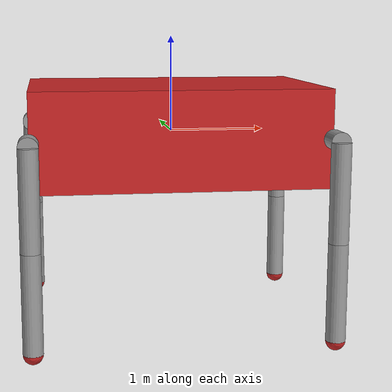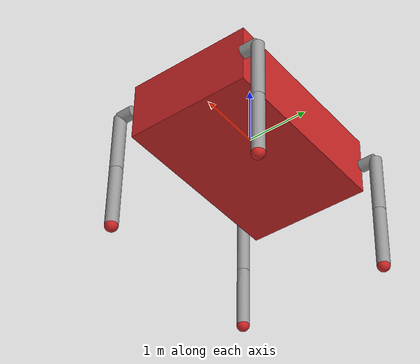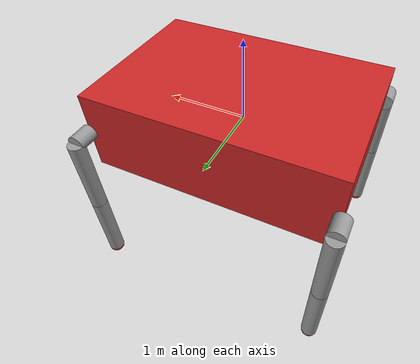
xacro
<?xml version="1.0" encoding="utf-8"?>
<robot name="quadruped" xmlns:xacro="http://www.ros.org/wiki/xacro">

    <!-- Define colors for links -->
    <xacro:include
        filename="/workspace/src/robot_descriptions/generic_quadruped_description/xacro/materials.xacro" />

    <!-- Define parameters (masses sizes) for the quadruped -->
    <xacro:include
        filename="/workspace/src/robot_descriptions/generic_quadruped_description/xacro/params.xacro" />

    <!-- Define macros for links, joints, and leg -->
    <xacro:include
        filename="/workspace/src/robot_descriptions/generic_quadruped_description/xacro/leg.xacro" />

    <xacro:base_link
        name="base" L_x="${base_Lx}" L_y="${base_Ly}" L_z="${base_Lz}" mass="${base_m}"
        inertial_link="False" />

    <!-- Insert dummy link to carry inertia values for base link -->
    <xacro:base_link
        name="base_inertia" L_x="${base_Lx}" L_y="${base_Ly}" L_z="${base_Lz}" mass="${base_m}"
        inertial_link="True" />

    <xacro:fixed_joint name="inertial_base_joint" parent="base" child="base_inertia" length="0.0" />

    <xacro:leg leg_name="FR" right="True"
        Px="${base_Lx/2}" Py="${-base_Ly/2}" Pz="0.0" rad="${FR_rad}" L1="${FR_L1}" L2="${FR_L2}"
        L3="${FR_L3}" m1="${FR_m1}" m2="${FR_m2}" m3="${FR_m3}" m4="${FR_m4}" />

    <xacro:leg leg_name="FL" right="False"
        Px="${base_Lx/2}" Py="${base_Ly/2}" Pz="0.0" rad="${FL_rad}" L1="${FL_L1}" L2="${FL_L2}"
        L3="${FL_L3}" m1="${FL_m1}" m2="${FL_m2}" m3="${FL_m3}" m4="${FL_m4}" />

    <xacro:leg leg_name="RL" right="False"
        Px="${-base_Lx/2}" Py="${base_Ly/2}" Pz="0.0" rad="${RL_rad}" L1="${RL_L1}" L2="${RL_L2}"
        L3="${RL_L3}" m1="${RL_m1}" m2="${RL_m2}" m3="${RL_m3}" m4="${RL_m4}" />

    <xacro:leg leg_name="RR" right="True"
        Px="${-base_Lx/2}" Py="${-base_Ly/2}" Pz="0.0" rad="${RR_rad}" L1="${RR_L1}" L2="${RR_L2}"
        L3="${RR_L3}" m1="${RR_m1}" m2="${RR_m2}" m3="${RR_m3}" m4="${RR_m4}" />

</robot>

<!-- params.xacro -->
<robot name="quadruped" xmlns:xacro="http://www.ros.org/wiki/xacro">

    <!-- Base Parameters -->
    <xacro:property name="base_Lx" value="3" />
    <xacro:property name="base_Ly" value="2" />
    <xacro:property name="base_Lz" value="1" />
    <xacro:property name="base_m" value="1" />

    <!-- FR Leg Parameters -->
    <xacro:property name="FR_rad" value="0.1" />
    <xacro:property name="FR_L1" value="0.25" />
    <xacro:property name="FR_L2" value="1" />
    <xacro:property name="FR_L3" value="1" />
    <xacro:property name="FR_m1" value="1" />
    <xacro:property name="FR_m2" value="1" />
    <xacro:property name="FR_m3" value="1" />
    <xacro:property name="FR_m4" value="1" />

    <!-- FL Leg Parameters -->
    <xacro:property name="FL_rad" value="0.1" />
    <xacro:property name="FL_L1" value="0.25" />
    <xacro:property name="FL_L2" value="1" />
    <xacro:property name="FL_L3" value="1" />
    <xacro:property name="FL_m1" value="1" />
    <xacro:property name="FL_m2" value="1" />
    <xacro:property name="FL_m3" value="1" />
    <xacro:property name="FL_m4" value="1" />

    <!-- RL Leg Parameters -->
    <xacro:property name="RL_rad" value="0.1" />
    <xacro:property name="RL_L1" value="0.25" />
    <xacro:property name="RL_L2" value="1" />
    <xacro:property name="RL_L3" value="1" />
    <xacro:property name="RL_m1" value="1" />
    <xacro:property name="RL_m2" value="1" />
    <xacro:property name="RL_m3" value="1" />
    <xacro:property name="RL_m4" value="1" />

    <!-- RR Leg Parameters -->
    <xacro:property name="RR_rad" value="0.1" />
    <xacro:property name="RR_L1" value="0.25" />
    <xacro:property name="RR_L2" value="1" />
    <xacro:property name="RR_L3" value="1" />
    <xacro:property name="RR_m1" value="1" />
    <xacro:property name="RR_m2" value="1" />
    <xacro:property name="RR_m3" value="1" />
    <xacro:property name="RR_m4" value="1" />

</robot>

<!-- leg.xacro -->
<robot xmlns:xacro="http://www.ros.org/wiki/xacro">

    <xacro:include
        filename="/workspace/src/robot_descriptions/generic_quadruped_description/xacro/const.xacro" />

    <xacro:macro name="base_to_hip_joint" params="name right parent child Px Py Pz roll pitch yaw">
        <xacro:if value="${right == True}">
            <joint name="${name}" type="continuous">
                <origin
                    xyz="${Px} ${Py} ${Pz}"
                    rpy="${roll+PI/2} ${pitch} ${yaw-PI/2}" />
                <parent
                    link="${parent}" />
                <child
                    link="${child}" />
                <axis
                    xyz="0 0 1" />
            </joint>
        </xacro:if>
        <xacro:if value="${right == False}">
            <joint name="${name}" type="continuous">
                <origin
                    xyz="${Px} ${Py} ${Pz}"
                    rpy="${roll+PI/2} ${pitch} ${yaw+PI/2}" />
                <parent
                    link="${parent}" />
                <child
                    link="${child}" />
                <axis
                    xyz="0 0 1" />
            </joint>
        </xacro:if>
    </xacro:macro>

    <xacro:macro name="rev_joint" params="name parent child length roll pitch yaw">
        <joint name="${name}" type="continuous">
            <origin
                xyz="${length} 0 0"
                rpy="${roll} ${pitch} ${yaw}" />
            <parent
                link="${parent}" />
            <child
                link="${child}" />
            <axis
                xyz="0 0 1" />
        </joint>
    </xacro:macro>

    <xacro:macro name="fixed_joint" params="name parent child length">
        <joint name="${name}" type="fixed">
            <origin
                xyz="${length} 0 0"
                rpy="0.0 0.0 0.0" />
            <parent
                link="${parent}" />
            <child
                link="${child}" />
        </joint>
    </xacro:macro>

    <xacro:macro name="base_link" params="name L_x L_y L_z mass inertial_link">
        <link name="${name}">
            <xacro:if value="${inertial_link == True}">
                <inertial>
                    <origin
                        xyz="0 0 0"
                        rpy="0 0 0" />
                    <mass
                        value="${mass}" />
                    <inertia
                        ixx="${(mass / 12) * (L_y*L_y + L_z*L_z)}"
                        ixy="0"
                        ixz="0"
                        iyy="${(mass / 12) * (L_x*L_x + L_z*L_z)}"
                        iyz="0"
                        izz="${(mass / 12) * (L_x*L_x + L_y*L_y)}" />
                </inertial>
            </xacro:if>
            <xacro:if value="${inertial_link == False}">
                <visual>
                    <origin
                        xyz="0 0 0"
                        rpy="0 0 0" />
                    <geometry>
                        <box size="${L_x} ${L_y} ${L_z}" />
                    </geometry>
                    <material name="red" />
                </visual>
            </xacro:if>
            <xacro:no_collision/>
        </link>
    </xacro:macro>

    <xacro:macro name="link" params="link_name mass rad length">
        <link name="${link_name}">
            <inertial>
                <origin
                    xyz="${length/2} 0 0"
                    rpy="0 0 0" />
                <mass value="${mass}" />
                <inertia
                    ixx="${.5 * mass * rad*rad}"
                    ixy="0"
                    ixz="0"
                    iyy="${(1/12) * (length*length + 3*rad*rad) * mass}"
                    iyz="0"
                    izz="${(1/12) * (length*length + 3*rad*rad) * mass}" />
            </inertial>
            <visual>
                <origin
                    xyz="${length/2} 0 0"
                    rpy="0 ${PI/2} 0" />
                <geometry>
                    <cylinder length="${length}" radius="${rad}" />
                </geometry>
                <material name="grey" />
            </visual>
            <xacro:no_collision/>
        </link>
    </xacro:macro>

    <xacro:macro name="foot" params="foot_name mass rad">
        <link name="${foot_name}">
            <inertial>
                <origin
                    xyz="0 0 0"
                    rpy="0 0 0" />
                <mass value="${mass}" />
                <inertia
                    ixx="${(2/5) * (mass*rad*rad)}"
                    ixy="0"
                    ixz="0"
                    iyy="${(83/320) * (mass*rad*rad)}"
                    iyz="0"
                    izz="${(83/320) * (mass*rad*rad)}" />
            </inertial>
            <visual>
                <origin
                    xyz="0 0 0"
                    rpy="0 0 0" />
                <geometry>
                    <sphere radius="${rad}" />
                </geometry>
                <material name="red" />
            </visual>
            <collision>
                <origin
                    xyz="0 0 0"
                    rpy="0 0 0" />
                <geometry>
                    <sphere radius="${rad}" />
                </geometry>
            </collision>
        </link>
    </xacro:macro>

    <xacro:macro name="no_collision">
        <collision>
            <geometry>
                <box size="0 0 0" />
            </geometry>
        </collision>
    </xacro:macro>

    <xacro:macro name="leg" params="leg_name right Px Py Pz rad L1 L2 L3 m1 m2 m3 m4">

        <xacro:link link_name="${leg_name}_hip" mass="${m1}" rad="${rad}" length="${L1}" />

        <xacro:base_to_hip_joint name="${leg_name}_hip_joint" right="${right}" parent="base"
            child="${leg_name}_hip"
            Px="${Px}" Py="${Py}" Pz="${Pz}" roll="0.0" pitch="0.0" yaw="0.0" />

        <xacro:link link_name="${leg_name}_thigh" mass="${m2}" rad="${rad}" length="${L2}" />

        <xacro:rev_joint name="${leg_name}_thigh_joint" parent="${leg_name}_hip"
            child="${leg_name}_thigh" length="${L1}" roll="${PI/2}" pitch="0.0" yaw="${-PI/2}" />

        <xacro:link link_name="${leg_name}_calf" mass="${m3}" rad="${rad}" length="${L3}" />

        <xacro:rev_joint name="${leg_name}_calf_joint" parent="${leg_name}_thigh"
            child="${leg_name}_calf" length="${L2}" roll="0.0" pitch="0.0" yaw="0.0" />

        <xacro:foot foot_name="${leg_name}_foot" mass="${m4}" rad="${rad}" />

        <xacro:fixed_joint name="${leg_name}_foot_joint" parent="${leg_name}_calf"
            child="${leg_name}_foot" length="${L3}" />

    </xacro:macro>
</robot>

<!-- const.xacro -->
<robot xmlns:xacro="http://www.ros.org/wiki/xacro">

    <!-- Constants for robot dimensions -->
    <xacro:property name="PI" value="3.1415926535897931"/>

</robot>
